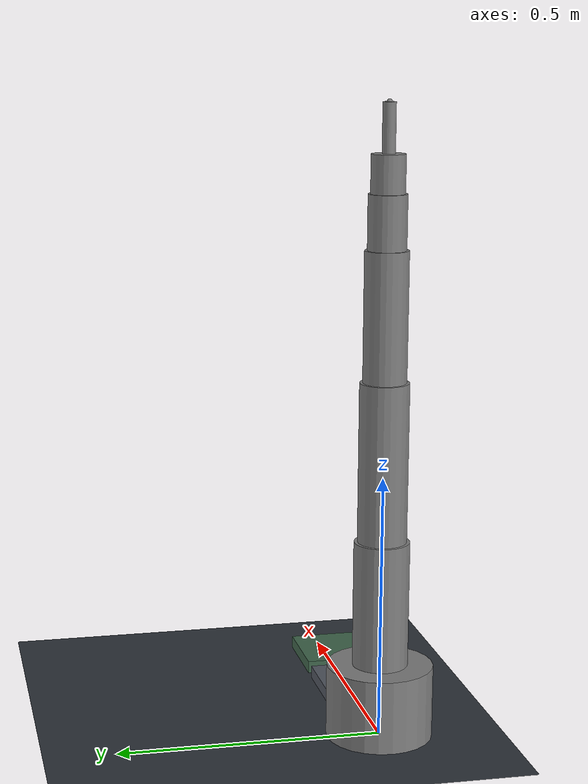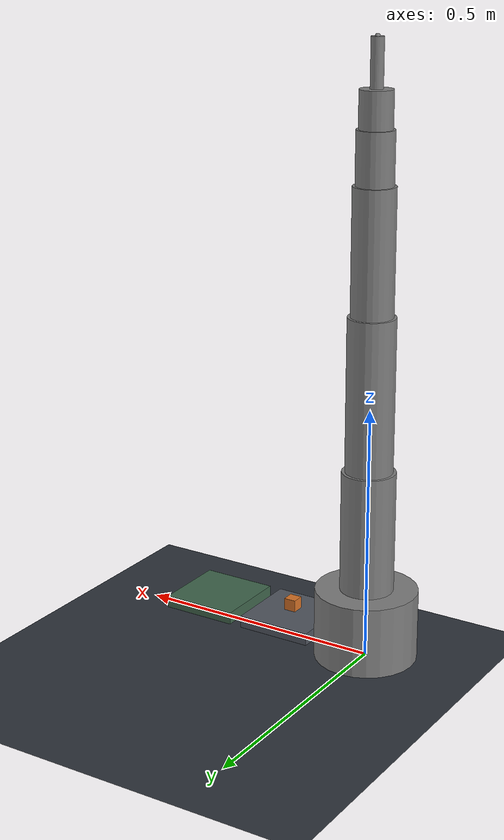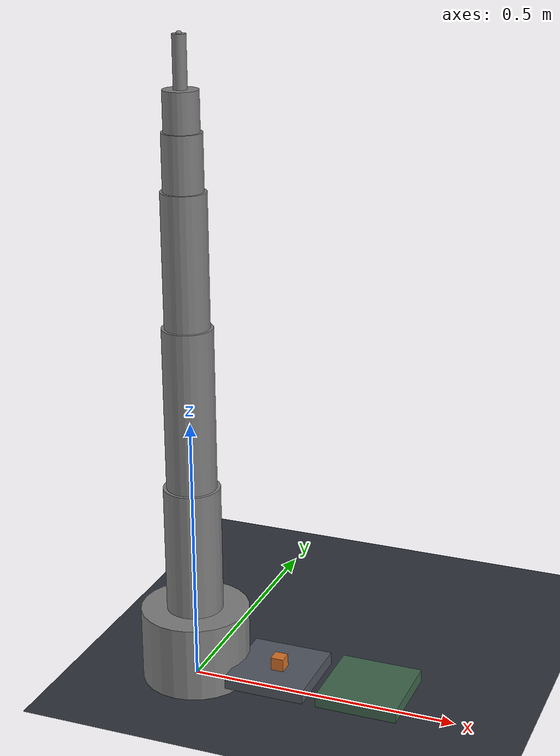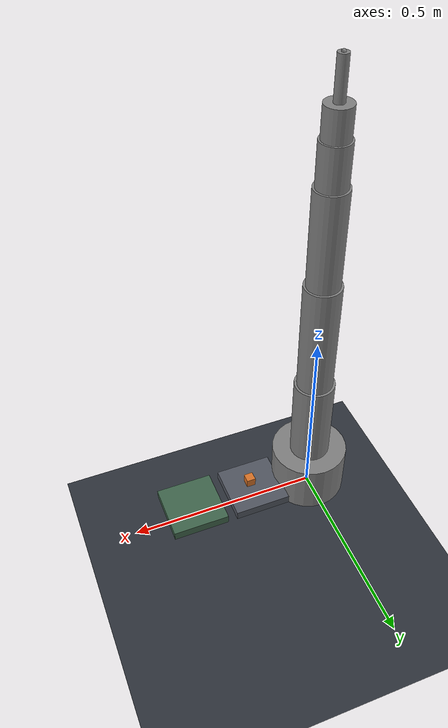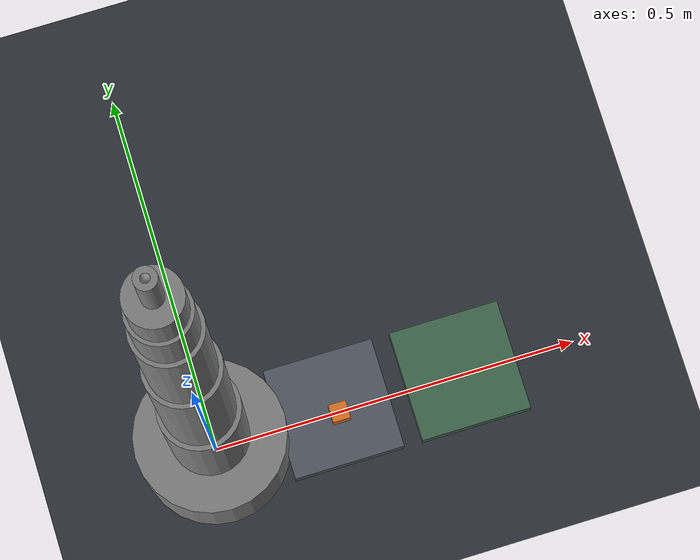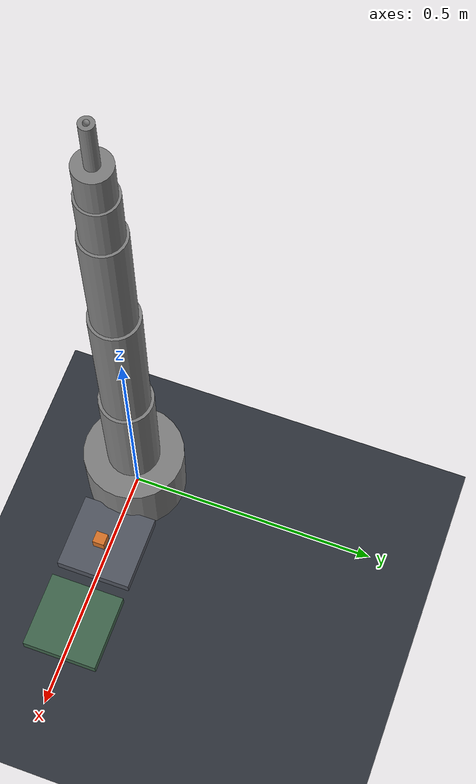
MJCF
<mujoco model="benchmark-world">
  <compiler angle="radian"/>

  <option tolerance="1e-10" integrator="implicitfast" jacobian="dense"/>

  <visual>
    <headlight ambient="0 0 0" diffuse="0 0 0" specular="0 0 0"/>
  </visual>

  <statistic extent="3" center="0 0 0"/>

  <default>
    <default class="robot/main"/>
  </default>

  <worldbody>
    <geom name="world/floor" size="3 3 0.1" type="plane" rgba="0.18 0.2 0.23 1"/>
    <camera name="world/camera" pos="1.8 -2.5 1.8" quat="0.803956 0.50933 0.164287 0.259321" fovy="50"/>
    <light name="world/key" pos="0 -1 3" dir="0 0 -1" type="directional" ambient="0.3 0.3 0.3" diffuse="0.8 0.8 0.8" specular="0.1 0.1 0.1"/>
    <body name="world/bench" pos="0.165 0 0.038">
      <geom name="world/bench_geom" size="0.075 0.075 0.012" type="box" condim="4" priority="1" friction="1 0.03 0.001" solref="0.004" solimp="0.95 0.99" rgba="0.32 0.34 0.38 1"/>
    </body>
    <body name="world/cube" pos="0.170478 -0.00920853 0.062">
      <joint name="world/cube_free" type="free"/>
      <geom name="world/cube_geom" size="0.012 0.012 0.012" type="box" condim="4" priority="1" friction="1.57543 0.03 0.001" solref="0.004" solimp="0.95 0.99" mass="0.014519" rgba="0.85 0.45 0.15 1"/>
    </body>
    <body name="world/destination" pos="0.34 0 0.038">
      <geom name="world/destination_geom" size="0.075 0.075 0.012" type="box" condim="4" priority="1" friction="1 0.03 0.001" solref="0.004" solimp="0.95 0.99" rgba="0.25 0.4 0.3 1"/>
    </body>
    <body name="robot/base">
      <inertial pos="0 0 0.07" quat="0.5 0.5 -0.5 0.5" mass="6" diaginertia="0.03 0.0248 0.0248"/>
      <geom size="0.1 0.07" pos="0 0 0.07" type="cylinder"/>
      <site name="robot/robot_base" pos="0 0 0"/>
      <body name="robot/link_0" pos="0 0 0.14">
        <inertial pos="0 0 0.12" mass="1.83489" diaginertia="0.0100479 0.0100479 0.00248077"/>
        <joint name="robot/joint_0" pos="0 0 0" axis="0 0 1" range="-2.85 2.85" actuatorfrcrange="-140 140"/>
        <geom size="0.052 0.12" pos="0 0 0.12" type="cylinder"/>
        <body name="robot/link_1" pos="0 0 0.24">
          <inertial pos="0 0 0.15" mass="1.77618" diaginertia="0.0142511 0.0142511 0.00185963"/>
          <joint name="robot/joint_1" pos="0 0 0" axis="0 1 0" range="-2.85 2.85" actuatorfrcrange="-140 140"/>
          <geom size="0.04576 0.15" pos="0 0 0.15" type="cylinder"/>
          <body name="robot/link_2" pos="0 0 0.3">
            <inertial pos="0 0 0.12" mass="1.10038" diaginertia="0.00572789 0.00572789 0.00089217"/>
            <joint name="robot/joint_2" pos="0 0 0" axis="0 1 0" range="-2.85 2.85" actuatorfrcrange="-140 140"/>
            <geom size="0.040269 0.12" pos="0 0 0.12" type="cylinder"/>
            <body name="robot/link_3" pos="0 0 0.24">
              <inertial pos="0 0 0.05" mass="0.355055" diaginertia="0.00040734 0.00040734 0.00022293"/>
              <joint name="robot/joint_3" pos="0 0 0" axis="0 0 1" range="-2.85 2.85" actuatorfrcrange="-140 140"/>
              <geom size="0.035437 0.05" pos="0 0 0.05" type="cylinder"/>
              <body name="robot/link_4" pos="0 0 0.1">
                <inertial pos="0 0 0.035" mass="0.25" diaginertia="0.00016286 0.00016286 0.00012156"/>
                <joint name="robot/joint_4" pos="0 0 0" axis="0 1 0" range="-2.85 2.85" actuatorfrcrange="-140 140"/>
                <geom size="0.031184 0.035" pos="0 0 0.035" type="cylinder"/>
                <site name="robot/link_4_wrist" pos="0 0 0"/>
                <body name="robot/tool" pos="0 0 0.07">
                  <inertial pos="0 0 0.045" mass="0.18" diaginertia="0.00012798 0.00012798 1.296e-05"/>
                  <geom size="0.012 0.045" pos="0 0 0.045" type="cylinder"/>
                  <site name="robot/link_4_tip" pos="0 0 0.09"/>
                </body>
              </body>
            </body>
          </body>
        </body>
      </body>
    </body>
  </worldbody>

  <actuator>
    <general name="robot/joint_0_motor" joint="robot/joint_0" ctrllimited="true" ctrlrange="-140 140" forcelimited="true" forcerange="-140 140"/>
    <general name="robot/joint_1_motor" joint="robot/joint_1" ctrllimited="true" ctrlrange="-140 140" forcelimited="true" forcerange="-140 140"/>
    <general name="robot/joint_2_motor" joint="robot/joint_2" ctrllimited="true" ctrlrange="-140 140" forcelimited="true" forcerange="-140 140"/>
    <general name="robot/joint_3_motor" joint="robot/joint_3" ctrllimited="true" ctrlrange="-140 140" forcelimited="true" forcerange="-140 140"/>
    <general name="robot/joint_4_motor" joint="robot/joint_4" ctrllimited="true" ctrlrange="-140 140" forcelimited="true" forcerange="-140 140"/>
  </actuator>
</mujoco>
